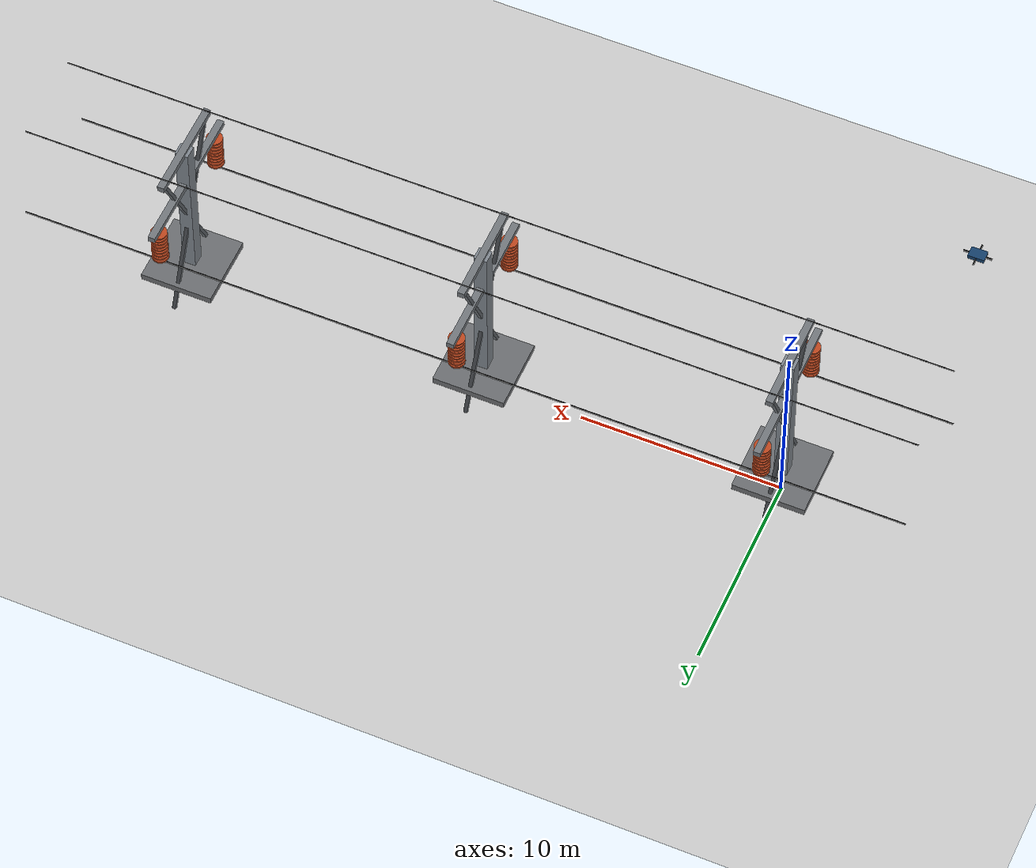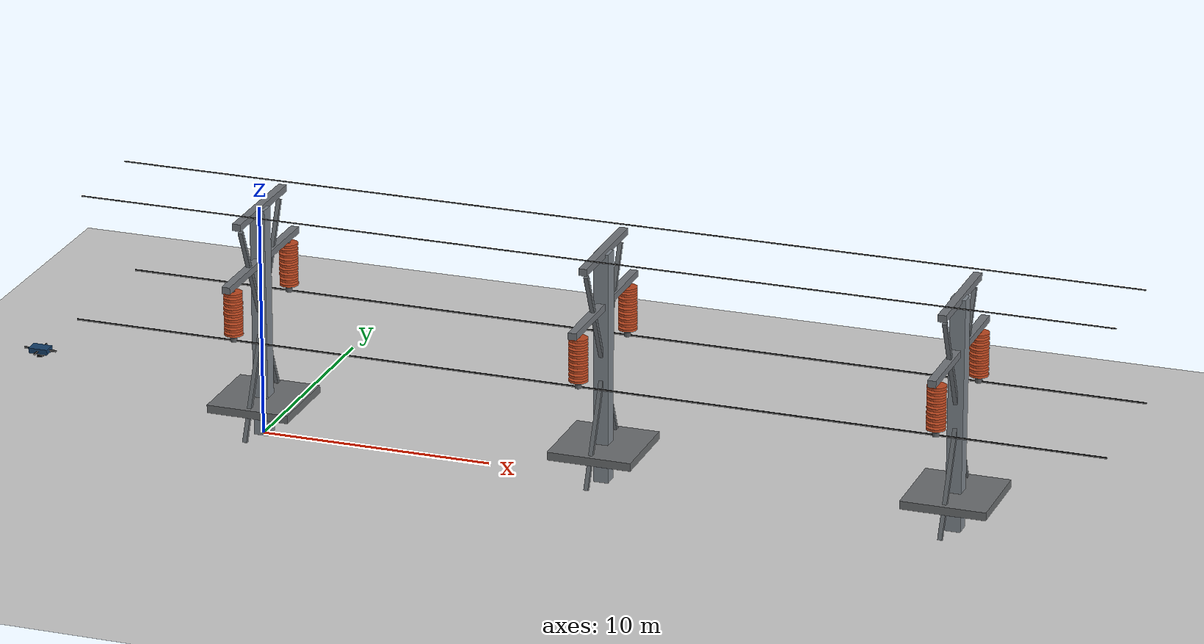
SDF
<?xml version="1.0"?>
<sdf version="1.6">
  <world name="transmission_line_inspection">
    <gravity>0 0 -9.81</gravity>
    <physics name="default_physics" type="ode">
      <real_time_update_rate>500</real_time_update_rate>
      <max_step_size>0.002</max_step_size>
    </physics>
    <scene>
      <ambient>0.5 0.5 0.5 1</ambient>
      <background>0.55 0.73 0.92 1</background>
      <shadows>true</shadows>
    </scene>
    <include><uri>model://sun</uri></include>
    <include><uri>model://ground_plane</uri></include>

    <include><uri>model://transmission_tower</uri><name>tower_0</name><pose>0 0 0 0 0 0</pose></include>
    <include><uri>model://transmission_tower</uri><name>tower_1</name><pose>15 0 0 0 0 0</pose></include>
    <include><uri>model://transmission_tower</uri><name>tower_2</name><pose>30 0 0 0 0 0</pose></include>

    <include><uri>model://insulator</uri><name>insulator_0_front</name><pose>0 -3 6.45 0 0 0</pose></include>
    <include><uri>model://insulator</uri><name>insulator_0_back</name><pose>0 3 6.45 0 0 0</pose></include>
    <include><uri>model://insulator</uri><name>insulator_1_front</name><pose>15 -3 6.45 0 0 0</pose></include>
    <include><uri>model://insulator</uri><name>insulator_1_back</name><pose>15 3 6.45 0 0 0</pose></include>
    <include><uri>model://insulator</uri><name>insulator_2_front</name><pose>30 -3 6.45 0 0 0</pose></include>
    <include><uri>model://insulator</uri><name>insulator_2_back</name><pose>30 3 6.45 0 0 0</pose></include>

    <model name="conductors">
      <static>true</static>
      <link name="wires">
        <visual name="front_low"><pose>15 -3 5.25 0 1.570796 0</pose><geometry><cylinder><radius>0.035</radius><length>44</length></cylinder></geometry><material><diffuse>0.12 0.12 0.12 1</diffuse></material></visual>
        <visual name="back_low"><pose>15 3 5.25 0 1.570796 0</pose><geometry><cylinder><radius>0.035</radius><length>44</length></cylinder></geometry><material><diffuse>0.12 0.12 0.12 1</diffuse></material></visual>
        <visual name="front_high"><pose>15 -2.2 10.4 0 1.570796 0</pose><geometry><cylinder><radius>0.025</radius><length>44</length></cylinder></geometry><material><diffuse>0.15 0.15 0.15 1</diffuse></material></visual>
        <visual name="back_high"><pose>15 2.2 10.4 0 1.570796 0</pose><geometry><cylinder><radius>0.025</radius><length>44</length></cylinder></geometry><material><diffuse>0.15 0.15 0.15 1</diffuse></material></visual>
      </link>
    </model>

    <include>
      <uri>model://inspection_drone</uri>
      <name>inspection_drone</name>
      <pose>-5 -11 7.2 0 0 0</pose>
    </include>
  </world>
</sdf>

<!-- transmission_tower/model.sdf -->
<sdf version="1.6">
  <model name="transmission_tower">
    <static>true</static>
    <link name="tower">
      <visual name="mast"><pose>0 0 5 0 0 0</pose><geometry><box><size>0.65 0.65 10</size></box></geometry><material><ambient>0.25 0.27 0.29 1</ambient><diffuse>0.5 0.53 0.56 1</diffuse></material></visual>
      <collision name="mast_collision"><pose>0 0 5 0 0 0</pose><geometry><box><size>0.65 0.65 10</size></box></geometry></collision>
      <visual name="base"><pose>0 0 1.5 0 0 0</pose><geometry><box><size>3.6 3.6 0.35</size></box></geometry><material><diffuse>0.42 0.43 0.44 1</diffuse></material></visual>
      <visual name="arm_low"><pose>0 0 7.7 0 0 0</pose><geometry><box><size>0.35 7.5 0.30</size></box></geometry><material><diffuse>0.45 0.47 0.49 1</diffuse></material></visual>
      <visual name="arm_high"><pose>0 0 10.0 0 0 0</pose><geometry><box><size>0.35 5.0 0.30</size></box></geometry><material><diffuse>0.45 0.47 0.49 1</diffuse></material></visual>
      <visual name="brace_a"><pose>0 0 5 0.42 0 0</pose><geometry><box><size>0.18 0.18 10.2</size></box></geometry><material><diffuse>0.38 0.40 0.42 1</diffuse></material></visual>
      <visual name="brace_b"><pose>0 0 5 -0.42 0 0</pose><geometry><box><size>0.18 0.18 10.2</size></box></geometry><material><diffuse>0.38 0.40 0.42 1</diffuse></material></visual>
    </link>
  </model>
</sdf>

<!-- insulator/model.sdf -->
<sdf version="1.6">
  <model name="insulator">
    <static>false</static>
    <link name="body">
      <gravity>false</gravity>
      <kinematic>true</kinematic>
      <inertial>
        <mass>8.0</mass>
        <inertia>
          <ixx>1.0</ixx><iyy>1.0</iyy><izz>1.0</izz>
        </inertia>
      </inertial>
      <collision name="shaft_collision">
        <geometry><cylinder><radius>0.09</radius><length>2.2</length></cylinder></geometry>
      </collision>
      <visual name="shaft">
        <geometry><cylinder><radius>0.075</radius><length>2.2</length></cylinder></geometry>
        <material><ambient>0.18 0.20 0.21 1</ambient><diffuse>0.32 0.34 0.35 1</diffuse><specular>0.7 0.7 0.7 1</specular></material>
      </visual>
      <visual name="cap_top">
        <pose>0 0 1.15 0 0 0</pose>
        <geometry><cylinder><radius>0.14</radius><length>0.18</length></cylinder></geometry>
        <material><ambient>0.15 0.16 0.17 1</ambient><diffuse>0.35 0.36 0.37 1</diffuse></material>
      </visual>
      <visual name="cap_bottom">
        <pose>0 0 -1.15 0 0 0</pose>
        <geometry><cylinder><radius>0.14</radius><length>0.18</length></cylinder></geometry>
        <material><ambient>0.15 0.16 0.17 1</ambient><diffuse>0.35 0.36 0.37 1</diffuse></material>
      </visual>
      <visual name="disc_0"><pose>0 0 -0.88 0 0 0</pose><geometry><cylinder><radius>0.40</radius><length>0.105</length></cylinder></geometry><material><ambient>0.32 0.10 0.055 1</ambient><diffuse>0.75 0.28 0.12 1</diffuse><specular>0.45 0.40 0.35 1</specular></material></visual>
      <visual name="disc_1"><pose>0 0 -0.66 0 0 0</pose><geometry><cylinder><radius>0.40</radius><length>0.105</length></cylinder></geometry><material><ambient>0.32 0.10 0.055 1</ambient><diffuse>0.75 0.28 0.12 1</diffuse><specular>0.45 0.40 0.35 1</specular></material></visual>
      <visual name="disc_2"><pose>0 0 -0.44 0 0 0</pose><geometry><cylinder><radius>0.40</radius><length>0.105</length></cylinder></geometry><material><ambient>0.32 0.10 0.055 1</ambient><diffuse>0.75 0.28 0.12 1</diffuse><specular>0.45 0.40 0.35 1</specular></material></visual>
      <visual name="disc_3"><pose>0 0 -0.22 0 0 0</pose><geometry><cylinder><radius>0.40</radius><length>0.105</length></cylinder></geometry><material><ambient>0.32 0.10 0.055 1</ambient><diffuse>0.75 0.28 0.12 1</diffuse><specular>0.45 0.40 0.35 1</specular></material></visual>
      <visual name="disc_4"><pose>0 0 0.00 0 0 0</pose><geometry><cylinder><radius>0.40</radius><length>0.105</length></cylinder></geometry><material><ambient>0.32 0.10 0.055 1</ambient><diffuse>0.75 0.28 0.12 1</diffuse><specular>0.45 0.40 0.35 1</specular></material></visual>
      <visual name="disc_5"><pose>0 0 0.22 0 0 0</pose><geometry><cylinder><radius>0.40</radius><length>0.105</length></cylinder></geometry><material><ambient>0.32 0.10 0.055 1</ambient><diffuse>0.75 0.28 0.12 1</diffuse><specular>0.45 0.40 0.35 1</specular></material></visual>
      <visual name="disc_6"><pose>0 0 0.44 0 0 0</pose><geometry><cylinder><radius>0.40</radius><length>0.105</length></cylinder></geometry><material><ambient>0.32 0.10 0.055 1</ambient><diffuse>0.75 0.28 0.12 1</diffuse><specular>0.45 0.40 0.35 1</specular></material></visual>
      <visual name="disc_7"><pose>0 0 0.66 0 0 0</pose><geometry><cylinder><radius>0.40</radius><length>0.105</length></cylinder></geometry><material><ambient>0.32 0.10 0.055 1</ambient><diffuse>0.75 0.28 0.12 1</diffuse><specular>0.45 0.40 0.35 1</specular></material></visual>
      <visual name="disc_8"><pose>0 0 0.88 0 0 0</pose><geometry><cylinder><radius>0.40</radius><length>0.105</length></cylinder></geometry><material><ambient>0.32 0.10 0.055 1</ambient><diffuse>0.75 0.28 0.12 1</diffuse><specular>0.45 0.40 0.35 1</specular></material></visual>
    </link>
  </model>
</sdf>

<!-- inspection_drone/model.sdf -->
<sdf version="1.6">
  <model name="inspection_drone">
    <static>false</static>
    <link name="base_link">
      <gravity>false</gravity>
      <inertial><mass>3.0</mass><inertia><ixx>0.2</ixx><iyy>0.2</iyy><izz>0.3</izz></inertia></inertial>
      <collision name="collision"><geometry><box><size>0.8 0.55 0.22</size></box></geometry></collision>
      <visual name="body">
        <geometry><box><size>0.8 0.55 0.22</size></box></geometry>
        <material><ambient>0.04 0.08 0.12 1</ambient><diffuse>0.08 0.25 0.42 1</diffuse></material>
      </visual>
      <visual name="arm_x"><geometry><box><size>1.4 0.07 0.06</size></box></geometry><material><diffuse>0.1 0.1 0.1 1</diffuse></material></visual>
      <visual name="arm_y"><geometry><box><size>0.07 1.2 0.06</size></box></geometry><material><diffuse>0.1 0.1 0.1 1</diffuse></material></visual>
      <visual name="camera_body"><pose>0 0 -0.20 0 0 0</pose><geometry><box><size>0.24 0.24 0.18</size></box></geometry><material><diffuse>0.05 0.05 0.05 1</diffuse></material></visual>
      <sensor name="inspection_camera" type="camera">
        <pose>0 0 -0.20 0 0 1.570796</pose>
        <always_on>true</always_on>
        <update_rate>15</update_rate>
        <visualize>true</visualize>
        <camera>
          <horizontal_fov>1.0472</horizontal_fov>
          <image><width>640</width><height>480</height><format>R8G8B8</format></image>
          <clip><near>0.1</near><far>100</far></clip>
        </camera>
        <plugin name="inspection_camera_ros" filename="libgazebo_ros_camera.so">
          <ros><namespace>/insulens</namespace></ros>
          <camera_name>camera</camera_name>
          <frame_name>camera_optical_frame</frame_name>
        </plugin>
      </sensor>
    </link>
    <plugin name="planar_motion" filename="libgazebo_ros_planar_move.so">
      <ros><namespace>/insulens</namespace></ros>
      <update_rate>30.0</update_rate>
      <publish_odom>true</publish_odom>
      <publish_odom_tf>true</publish_odom_tf>
      <odometry_frame>odom</odometry_frame>
      <robot_base_frame>base_link</robot_base_frame>
    </plugin>
  </model>
</sdf>
